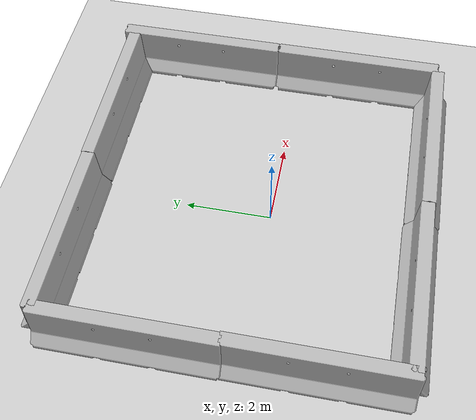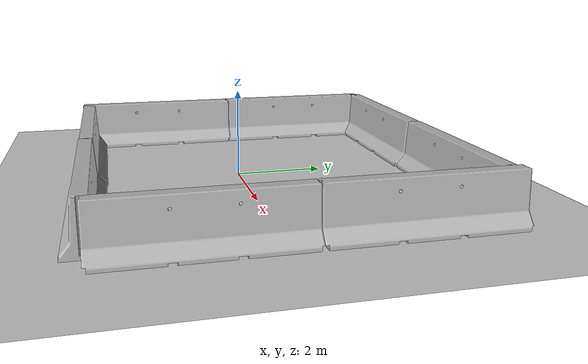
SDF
<sdf version="1.6">
 <world name="default">
  <light name="sun" type="directional">
   <pose>0 0 10 0 -0 0</pose>
   <diffuse>0.8 0.8 0.8 1</diffuse>
   <specular>0.2 0.2 0.2 1</specular>
   <attenuation>
    <range>1000</range>
    <constant>0.9</constant>
    <linear>0.01</linear>
    <quadratic>0.001</quadratic>
   </attenuation>
   <direction>-0.5 0.1 -0.9</direction>
  </light>
  <model name="ground_plane">
   <static>1</static>
   <link name="link">
    <collision name="collision">
     <geometry><plane><normal>0 0 1</normal><size>100 100</size></plane></geometry>
     <surface>
      <contact><collide_bitmask>65535</collide_bitmask></contact>
      <friction><ode><mu>100</mu><mu2>50</mu2></ode></friction>
     </surface>
    </collision>
    <visual name="visual">
     <cast_shadows>0</cast_shadows>
     <geometry><plane><normal>0 0 1</normal><size>100 100</size></plane></geometry>
     <material>
      <script><uri>file://media/materials/scripts/gazebo.material</uri><name>Gazebo/Grey</name></script>
     </material>
    </visual>
   </link>
  </model>
  <gravity>0 0 -9.8</gravity>
  <magnetic_field>6e-06 2.3e-05 -4.2e-05</magnetic_field>
  <atmosphere type="adiabatic"/>
  <physics name="default_physics" default="0" type="ode">
   <max_step_size>0.001</max_step_size>
   <real_time_factor>1</real_time_factor>
   <real_time_update_rate>1000</real_time_update_rate>
  </physics>
  <scene><ambient>0.4 0.4 0.4 1</ambient><background>0.7 0.7 0.7 1</background><shadows>1</shadows></scene>
  <spherical_coordinates>
   <surface_model>EARTH_WGS84</surface_model>
   <latitude_deg>0</latitude_deg>
   <longitude_deg>0</longitude_deg>
   <elevation>0</elevation>
   <heading_deg>0</heading_deg>
  </spherical_coordinates>
  <model name="jersey_barrier">
   <static>1</static>
   <link name="link">
    <visual name="visual">
     <geometry><mesh><uri>model://jersey_barrier/meshes/jersey_barrier.dae</uri></mesh></geometry>
    </visual>
    <collision name="upright">
     <pose>0 0 0.5715 0 -0 0</pose>
     <geometry><box><size>4.06542 0.3063 1.143</size></box></geometry>
    </collision>
    <collision name="base">
     <pose>0 0 0.032258 0 -0 0</pose>
     <geometry><box><size>4.06542 0.8107 0.064516</size></box></geometry>
    </collision>
    <collision name="base2">
     <pose>0 0 0.1 0 -0 0</pose>
     <geometry><box><size>4.06542 0.65 0.1</size></box></geometry>
    </collision>
    <collision name="base3">
     <pose>0 0 0.2 0 -0 0</pose>
     <geometry><box><size>4.06542 0.5 0.1</size></box></geometry>
    </collision>
    <collision name="left-angle">
     <pose>0 -0.224 0.2401 0.9 -0 0</pose>
     <geometry><box><size>4.06542 0.5 0.064516</size></box></geometry>
    </collision>
    <collision name="right-angle">
     <pose>0 0.224 0.2401 -0.9 0 0</pose>
     <geometry><box><size>4.06542 0.5 0.064516</size></box></geometry>
    </collision>
   </link>
   <pose>2.33108 -3.48724 0 0 -0 0</pose>
  </model>
  <model name="jersey_barrier_clone">
   <static>1</static>
   <link name="link">
    <visual name="visual">
     <geometry><mesh><uri>model://jersey_barrier/meshes/jersey_barrier.dae</uri></mesh></geometry>
    </visual>
    <collision name="upright">
     <pose>0 0 0.5715 0 -0 0</pose>
     <geometry><box><size>4.06542 0.3063 1.143</size></box></geometry>
    </collision>
    <collision name="base">
     <pose>0 0 0.032258 0 -0 0</pose>
     <geometry><box><size>4.06542 0.8107 0.064516</size></box></geometry>
    </collision>
    <collision name="base2">
     <pose>0 0 0.1 0 -0 0</pose>
     <geometry><box><size>4.06542 0.65 0.1</size></box></geometry>
    </collision>
    <collision name="base3">
     <pose>0 0 0.2 0 -0 0</pose>
     <geometry><box><size>4.06542 0.5 0.1</size></box></geometry>
    </collision>
    <collision name="left-angle">
     <pose>0 -0.224 0.2401 0.9 -0 0</pose>
     <geometry><box><size>4.06542 0.5 0.064516</size></box></geometry>
    </collision>
    <collision name="right-angle">
     <pose>0 0.224 0.2401 -0.9 0 0</pose>
     <geometry><box><size>4.06542 0.5 0.064516</size></box></geometry>
    </collision>
   </link>
   <pose>2.28757 4.35329 0 0 -0 0</pose>
  </model>
  <model name="jersey_barrier_clone_clone">
   <static>1</static>
   <link name="link">
    <visual name="visual">
     <geometry><mesh><uri>model://jersey_barrier/meshes/jersey_barrier.dae</uri></mesh></geometry>
    </visual>
    <collision name="upright">
     <pose>0 0 0.5715 0 -0 0</pose>
     <geometry><box><size>4.06542 0.3063 1.143</size></box></geometry>
    </collision>
    <collision name="base">
     <pose>0 0 0.032258 0 -0 0</pose>
     <geometry><box><size>4.06542 0.8107 0.064516</size></box></geometry>
    </collision>
    <collision name="base2">
     <pose>0 0 0.1 0 -0 0</pose>
     <geometry><box><size>4.06542 0.65 0.1</size></box></geometry>
    </collision>
    <collision name="base3">
     <pose>0 0 0.2 0 -0 0</pose>
     <geometry><box><size>4.06542 0.5 0.1</size></box></geometry>
    </collision>
    <collision name="left-angle">
     <pose>0 -0.224 0.2401 0.9 -0 0</pose>
     <geometry><box><size>4.06542 0.5 0.064516</size></box></geometry>
    </collision>
    <collision name="right-angle">
     <pose>0 0.224 0.2401 -0.9 0 0</pose>
     <geometry><box><size>4.06542 0.5 0.064516</size></box></geometry>
    </collision>
   </link>
   <pose>4.45126 -1.46653 0 0 -0 1.57</pose>
  </model>
  <model name="jersey_barrier_clone_clone_clone">
   <static>1</static>
   <link name="link">
    <visual name="visual">
     <geometry><mesh><uri>model://jersey_barrier/meshes/jersey_barrier.dae</uri></mesh></geometry>
    </visual>
    <collision name="upright">
     <pose>0 0 0.5715 0 -0 0</pose>
     <geometry><box><size>4.06542 0.3063 1.143</size></box></geometry>
    </collision>
    <collision name="base">
     <pose>0 0 0.032258 0 -0 0</pose>
     <geometry><box><size>4.06542 0.8107 0.064516</size></box></geometry>
    </collision>
    <collision name="base2">
     <pose>0 0 0.1 0 -0 0</pose>
     <geometry><box><size>4.06542 0.65 0.1</size></box></geometry>
    </collision>
    <collision name="base3">
     <pose>0 0 0.2 0 -0 0</pose>
     <geometry><box><size>4.06542 0.5 0.1</size></box></geometry>
    </collision>
    <collision name="left-angle">
     <pose>0 -0.224 0.2401 0.9 -0 0</pose>
     <geometry><box><size>4.06542 0.5 0.064516</size></box></geometry>
    </collision>
    <collision name="right-angle">
     <pose>0 0.224 0.2401 -0.9 0 0</pose>
     <geometry><box><size>4.06542 0.5 0.064516</size></box></geometry>
    </collision>
   </link>
   <pose>4.44963 2.59635 0 0 -0 1.57</pose>
  </model>
  <model name="jersey_barrier_clone_clone_clone_clone">
   <static>1</static>
   <link name="link">
    <visual name="visual">
     <geometry><mesh><uri>model://jersey_barrier/meshes/jersey_barrier.dae</uri></mesh></geometry>
    </visual>
    <collision name="upright">
     <pose>0 0 0.5715 0 -0 0</pose>
     <geometry><box><size>4.06542 0.3063 1.143</size></box></geometry>
    </collision>
    <collision name="base">
     <pose>0 0 0.032258 0 -0 0</pose>
     <geometry><box><size>4.06542 0.8107 0.064516</size></box></geometry>
    </collision>
    <collision name="base2">
     <pose>0 0 0.1 0 -0 0</pose>
     <geometry><box><size>4.06542 0.65 0.1</size></box></geometry>
    </collision>
    <collision name="base3">
     <pose>0 0 0.2 0 -0 0</pose>
     <geometry><box><size>4.06542 0.5 0.1</size></box></geometry>
    </collision>
    <collision name="left-angle">
     <pose>0 -0.224 0.2401 0.9 -0 0</pose>
     <geometry><box><size>4.06542 0.5 0.064516</size></box></geometry>
    </collision>
    <collision name="right-angle">
     <pose>0 0.224 0.2401 -0.9 0 0</pose>
     <geometry><box><size>4.06542 0.5 0.064516</size></box></geometry>
    </collision>
   </link>
   <pose>-3.72027 2.35646 0 0 -0 1.57</pose>
  </model>
  <model name="jersey_barrier_clone_clone_clone_clone_clone">
   <static>1</static>
   <link name="link">
    <visual name="visual">
     <geometry><mesh><uri>model://jersey_barrier/meshes/jersey_barrier.dae</uri></mesh></geometry>
    </visual>
    <collision name="upright">
     <pose>0 0 0.5715 0 -0 0</pose>
     <geometry><box><size>4.06542 0.3063 1.143</size></box></geometry>
    </collision>
    <collision name="base">
     <pose>0 0 0.032258 0 -0 0</pose>
     <geometry><box><size>4.06542 0.8107 0.064516</size></box></geometry>
    </collision>
    <collision name="base2">
     <pose>0 0 0.1 0 -0 0</pose>
     <geometry><box><size>4.06542 0.65 0.1</size></box></geometry>
    </collision>
    <collision name="base3">
     <pose>0 0 0.2 0 -0 0</pose>
     <geometry><box><size>4.06542 0.5 0.1</size></box></geometry>
    </collision>
    <collision name="left-angle">
     <pose>0 -0.224 0.2401 0.9 -0 0</pose>
     <geometry><box><size>4.06542 0.5 0.064516</size></box></geometry>
    </collision>
    <collision name="right-angle">
     <pose>0 0.224 0.2401 -0.9 0 0</pose>
     <geometry><box><size>4.06542 0.5 0.064516</size></box></geometry>
    </collision>
   </link>
   <pose>-3.70122 -1.60444 0 0 -0 1.57</pose>
  </model>
  <model name="jersey_barrier_clone_clone_0">
   <static>1</static>
   <link name="link">
    <visual name="visual">
     <geometry><mesh><uri>model://jersey_barrier/meshes/jersey_barrier.dae</uri></mesh></geometry>
    </visual>
    <collision name="upright">
     <pose>0 0 0.5715 0 -0 0</pose>
     <geometry><box><size>4.06542 0.3063 1.143</size></box></geometry>
    </collision>
    <collision name="base">
     <pose>0 0 0.032258 0 -0 0</pose>
     <geometry><box><size>4.06542 0.8107 0.064516</size></box></geometry>
    </collision>
    <collision name="base2">
     <pose>0 0 0.1 0 -0 0</pose>
     <geometry><box><size>4.06542 0.65 0.1</size></box></geometry>
    </collision>
    <collision name="base3">
     <pose>0 0 0.2 0 -0 0</pose>
     <geometry><box><size>4.06542 0.5 0.1</size></box></geometry>
    </collision>
    <collision name="left-angle">
     <pose>0 -0.224 0.2401 0.9 -0 0</pose>
     <geometry><box><size>4.06542 0.5 0.064516</size></box></geometry>
    </collision>
    <collision name="right-angle">
     <pose>0 0.224 0.2401 -0.9 0 0</pose>
     <geometry><box><size>4.06542 0.5 0.064516</size></box></geometry>
    </collision>
   </link>
   <pose>-1.73054 4.33382 0 0 -0 0</pose>
  </model>
  <model name="jersey_barrier_clone_0">
   <static>1</static>
   <link name="link">
    <visual name="visual">
     <geometry><mesh><uri>model://jersey_barrier/meshes/jersey_barrier.dae</uri></mesh></geometry>
    </visual>
    <collision name="upright">
     <pose>0 0 0.5715 0 -0 0</pose>
     <geometry><box><size>4.06542 0.3063 1.143</size></box></geometry>
    </collision>
    <collision name="base">
     <pose>0 0 0.032258 0 -0 0</pose>
     <geometry><box><size>4.06542 0.8107 0.064516</size></box></geometry>
    </collision>
    <collision name="base2">
     <pose>0 0 0.1 0 -0 0</pose>
     <geometry><box><size>4.06542 0.65 0.1</size></box></geometry>
    </collision>
    <collision name="base3">
     <pose>0 0 0.2 0 -0 0</pose>
     <geometry><box><size>4.06542 0.5 0.1</size></box></geometry>
    </collision>
    <collision name="left-angle">
     <pose>0 -0.224 0.2401 0.9 -0 0</pose>
     <geometry><box><size>4.06542 0.5 0.064516</size></box></geometry>
    </collision>
    <collision name="right-angle">
     <pose>0 0.224 0.2401 -0.9 0 0</pose>
     <geometry><box><size>4.06542 0.5 0.064516</size></box></geometry>
    </collision>
   </link>
   <pose>-1.69391 -3.46846 0 0 -0 0</pose>
  </model>
 </world>
</sdf>
